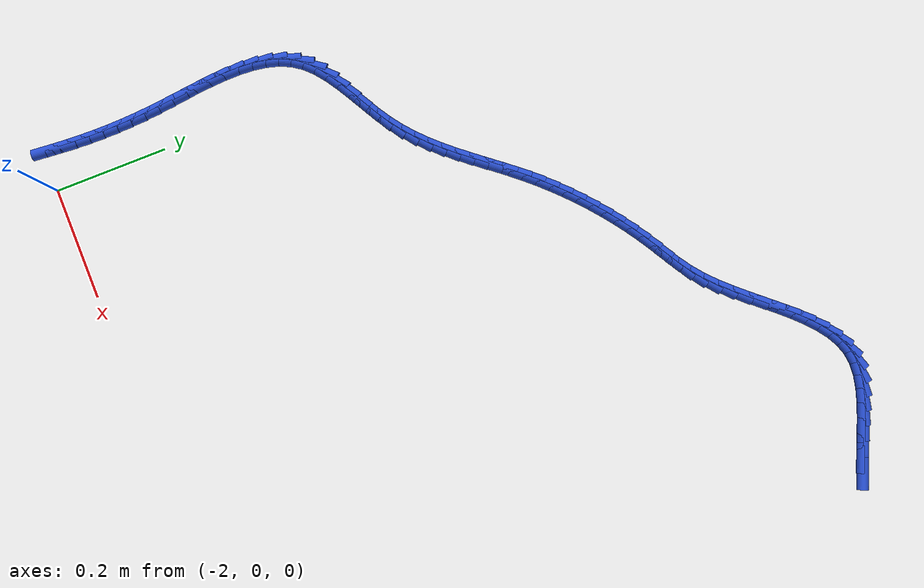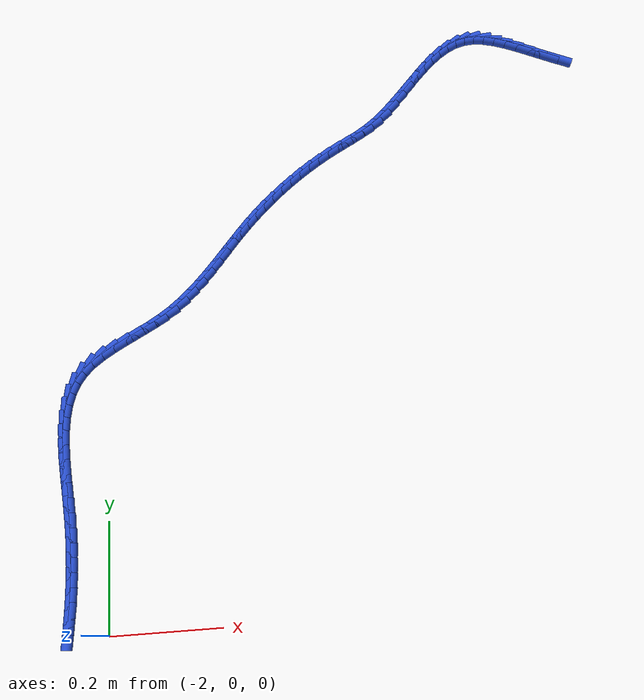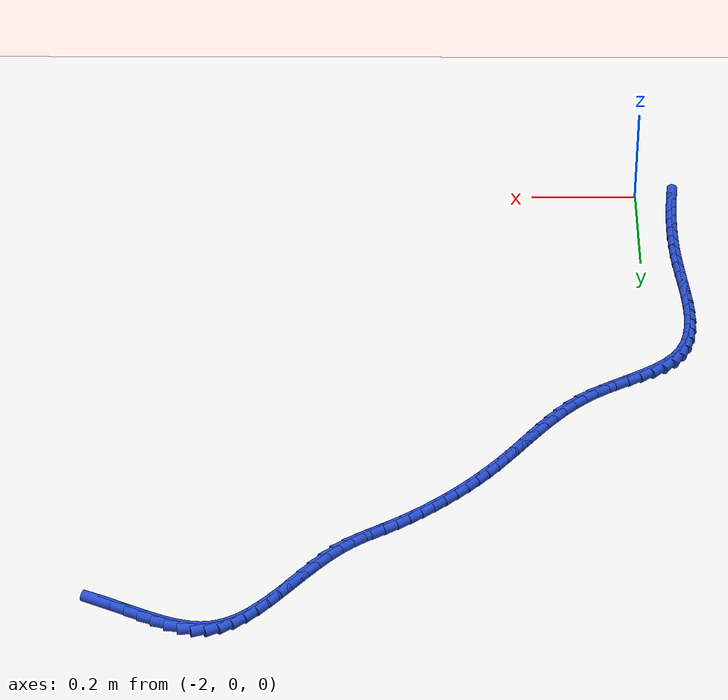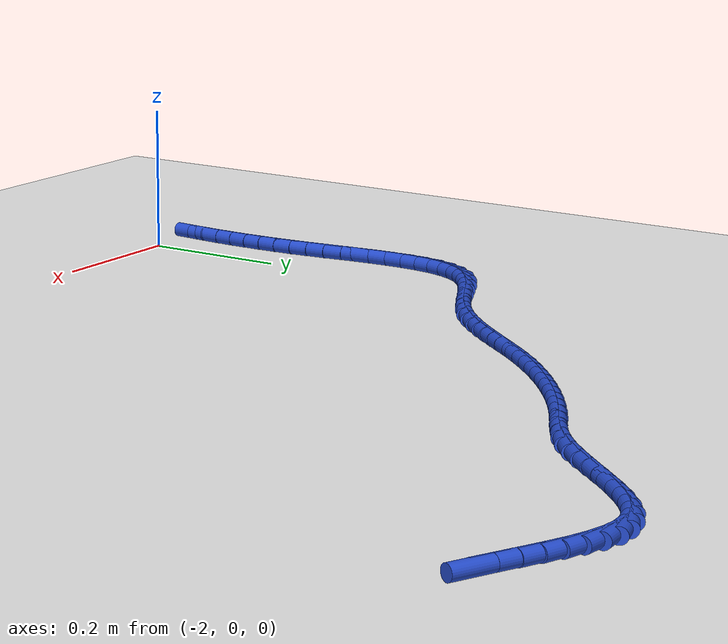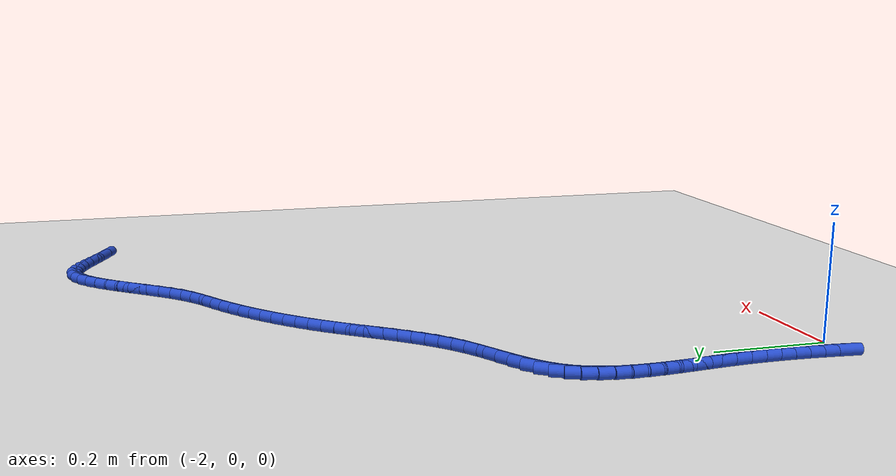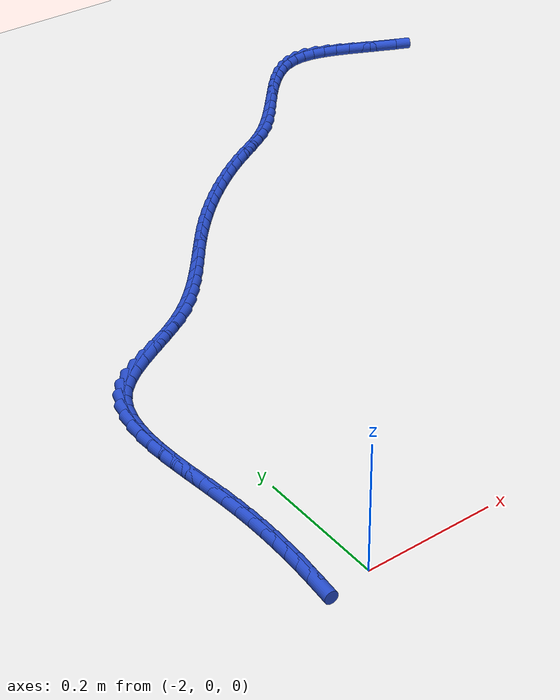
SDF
<sdf version="1.6">
 <world name="default">
  <model name="ground_plane">
   <static>1</static>
   <link name="link">
    <collision name="collision">
     <geometry><plane><normal>0 0 1</normal><size>100 100</size></plane></geometry>
     <surface><friction><ode><mu>100</mu><mu2>50</mu2></ode></friction></surface>
    </collision>
    <visual name="visual">
     <cast_shadows>0</cast_shadows>
     <geometry><plane><normal>0 0 1</normal><size>100 100</size></plane></geometry>
     <material>
      <script><uri>file://media/materials/scripts/gazebo.material</uri><name>Gazebo/WhiteGlow</name></script>
     </material>
    </visual>
   </link>
  </model>
  <model name="line">
   <link name="link_66">
    <pose>-1.0453894091018305 1.1118237958937458 0.01 0 1.57 -0.4169796591906771</pose>
    <collision name="collision">
     <geometry><cylinder><radius>0.01</radius><length>0.08</length></cylinder></geometry>
    </collision>
    <visual name="visual">
     <material>
      <script><name>Gazebo/Blue</name><uri>file://media/materials/scripts/gazebo.material</uri></script>
     </material>
     <geometry><cylinder><radius>0.01</radius><length>0.08</length></cylinder></geometry>
    </visual>
   </link>
   <link name="link_67">
    <pose>-1.0707755451050622 1.1230687050792298 0.01 0 1.57 -0.4318065948784096</pose>
    <collision name="collision">
     <geometry><cylinder><radius>0.01</radius><length>0.08</length></cylinder></geometry>
    </collision>
    <visual name="visual">
     <material>
      <script><name>Gazebo/Blue</name><uri>file://media/materials/scripts/gazebo.material</uri></script>
     </material>
     <geometry><cylinder><radius>0.01</radius><length>0.08</length></cylinder></geometry>
    </visual>
   </link>
   <link name="link_68">
    <pose>-1.0957689422361025 1.1345858979371257 0.01 0 1.57 -0.4237304479402189</pose>
    <collision name="collision">
     <geometry><cylinder><radius>0.01</radius><length>0.08</length></cylinder></geometry>
    </collision>
    <visual name="visual">
     <material>
      <script><name>Gazebo/Blue</name><uri>file://media/materials/scripts/gazebo.material</uri></script>
     </material>
     <geometry><cylinder><radius>0.01</radius><length>0.08</length></cylinder></geometry>
    </visual>
   </link>
   <link name="link_69">
    <pose>-1.1202995102455309 1.1456505193976976 0.01 0 1.57 -0.39081404400879194</pose>
    <collision name="collision">
     <geometry><cylinder><radius>0.01</radius><length>0.08</length></cylinder></geometry>
    </collision>
    <visual name="visual">
     <material>
      <script><name>Gazebo/Blue</name><uri>file://media/materials/scripts/gazebo.material</uri></script>
     </material>
     <geometry><cylinder><radius>0.01</radius><length>0.08</length></cylinder></geometry>
    </visual>
   </link>
   <link name="link_70">
    <pose>-1.1442971588839248 1.1555377143912107 0.01 0 1.57 -0.32891570914471635</pose>
    <collision name="collision">
     <geometry><cylinder><radius>0.01</radius><length>0.08</length></cylinder></geometry>
    </collision>
    <visual name="visual">
     <material>
      <script><name>Gazebo/Blue</name><uri>file://media/materials/scripts/gazebo.material</uri></script>
     </material>
     <geometry><cylinder><radius>0.01</radius><length>0.08</length></cylinder></geometry>
    </visual>
   </link>
   <link name="link_71">
    <pose>-1.1676917979018644 1.1635226278479285 0.01 0 1.57 -0.23157153831979121</pose>
    <collision name="collision">
     <geometry><cylinder><radius>0.01</radius><length>0.08</length></cylinder></geometry>
    </collision>
    <visual name="visual">
     <material>
      <script><name>Gazebo/Blue</name><uri>file://media/materials/scripts/gazebo.material</uri></script>
     </material>
     <geometry><cylinder><radius>0.01</radius><length>0.08</length></cylinder></geometry>
    </visual>
   </link>
   <link name="link_72">
    <pose>-1.1904133370499284 1.168880404698117 0.01 0 1.57 -0.09100976090152608</pose>
    <collision name="collision">
     <geometry><cylinder><radius>0.01</radius><length>0.08</length></cylinder></geometry>
    </collision>
    <visual name="visual">
     <material>
      <script><name>Gazebo/Blue</name><uri>file://media/materials/scripts/gazebo.material</uri></script>
     </material>
     <geometry><cylinder><radius>0.01</radius><length>0.08</length></cylinder></geometry>
    </visual>
   </link>
   <link name="link_73">
    <pose>-1.2123916860786954 1.1708861898720404 0.01 0 1.57 0.09744494103459894</pose>
    <collision name="collision">
     <geometry><cylinder><radius>0.01</radius><length>0.08</length></cylinder></geometry>
    </collision>
    <visual name="visual">
     <material>
      <script><name>Gazebo/Blue</name><uri>file://media/materials/scripts/gazebo.material</uri></script>
     </material>
     <geometry><cylinder><radius>0.01</radius><length>0.08</length></cylinder></geometry>
    </visual>
   </link>
   <link name="link_74">
    <pose>-1.2335570856744762 1.1688171758213879 0.01 0 1.57 0.3084296139586318</pose>
    <collision name="collision">
     <geometry><cylinder><radius>0.01</radius><length>0.08</length></cylinder></geometry>
    </collision>
    <visual name="visual">
     <material>
      <script><name>Gazebo/Blue</name><uri>file://media/materials/scripts/gazebo.material</uri></script>
     </material>
     <geometry><cylinder><radius>0.01</radius><length>0.08</length></cylinder></geometry>
    </visual>
   </link>
   <link name="link_75">
    <pose>-1.2539019714685462 1.1623353592665024 0.01 0 1.57 0.48662779591839656</pose>
    <collision name="collision">
     <geometry><cylinder><radius>0.01</radius><length>0.08</length></cylinder></geometry>
    </collision>
    <visual name="visual">
     <material>
      <script><name>Gazebo/Blue</name><uri>file://media/materials/scripts/gazebo.material</uri></script>
     </material>
     <geometry><cylinder><radius>0.01</radius><length>0.08</length></cylinder></geometry>
    </visual>
   </link>
   <link name="link_76">
    <pose>-1.273553823532791 1.1519382658800192 0.01 0 1.57 0.62231070719771</pose>
    <collision name="collision">
     <geometry><cylinder><radius>0.01</radius><length>0.08</length></cylinder></geometry>
    </collision>
    <visual name="visual">
     <material>
      <script><name>Gazebo/Blue</name><uri>file://media/materials/scripts/gazebo.material</uri></script>
     </material>
     <geometry><cylinder><radius>0.01</radius><length>0.08</length></cylinder></geometry>
    </visual>
   </link>
   <link name="link_77">
    <pose>-1.2926578312646495 1.138232990111772 0.01 0 1.57 0.7201211053214716</pose>
    <collision name="collision">
     <geometry><cylinder><radius>0.01</radius><length>0.08</length></cylinder></geometry>
    </collision>
    <visual name="visual">
     <material>
      <script><name>Gazebo/Blue</name><uri>file://media/materials/scripts/gazebo.material</uri></script>
     </material>
     <geometry><cylinder><radius>0.01</radius><length>0.08</length></cylinder></geometry>
    </visual>
   </link>
   <link name="link_78">
    <pose>-1.3113591840615595 1.1218266264115935 0.01 0 1.57 0.7869266796724762</pose>
    <collision name="collision">
     <geometry><cylinder><radius>0.01</radius><length>0.08</length></cylinder></geometry>
    </collision>
    <visual name="visual">
     <material>
      <script><name>Gazebo/Blue</name><uri>file://media/materials/scripts/gazebo.material</uri></script>
     </material>
     <geometry><cylinder><radius>0.01</radius><length>0.08</length></cylinder></geometry>
    </visual>
   </link>
   <link name="link_79">
    <pose>-1.3298030713209599 1.1033262692293173 0.01 0 1.57 0.8285783532904871</pose>
    <collision name="collision">
     <geometry><cylinder><radius>0.01</radius><length>0.08</length></cylinder></geometry>
    </collision>
    <visual name="visual">
     <material>
      <script><name>Gazebo/Blue</name><uri>file://media/materials/scripts/gazebo.material</uri></script>
     </material>
     <geometry><cylinder><radius>0.01</radius><length>0.08</length></cylinder></geometry>
    </visual>
   </link>
   <link name="link_80">
    <pose>-1.3481346824402878 1.083339013014777 0.01 0 1.57 0.8491006721655542</pose>
    <collision name="collision">
     <geometry><cylinder><radius>0.01</radius><length>0.08</length></cylinder></geometry>
    </collision>
    <visual name="visual">
     <material>
      <script><name>Gazebo/Blue</name><uri>file://media/materials/scripts/gazebo.material</uri></script>
     </material>
     <geometry><cylinder><radius>0.01</radius><length>0.08</length></cylinder></geometry>
    </visual>
   </link>
   <link name="link_81">
    <pose>-1.3664992068169821 1.062471952217805 0.01 0 1.57 0.8507532141520987</pose>
    <collision name="collision">
     <geometry><cylinder><radius>0.01</radius><length>0.08</length></cylinder></geometry>
    </collision>
    <visual name="visual">
     <material>
      <script><name>Gazebo/Blue</name><uri>file://media/materials/scripts/gazebo.material</uri></script>
     </material>
     <geometry><cylinder><radius>0.01</radius><length>0.08</length></cylinder></geometry>
    </visual>
   </link>
   <link name="link_82">
    <pose>-1.3850418338484816 1.0413321812882352 0.01 0 1.57 0.8342476919728754</pose>
    <collision name="collision">
     <geometry><cylinder><radius>0.01</radius><length>0.08</length></cylinder></geometry>
    </collision>
    <visual name="visual">
     <material>
      <script><name>Gazebo/Blue</name><uri>file://media/materials/scripts/gazebo.material</uri></script>
     </material>
     <geometry><cylinder><radius>0.01</radius><length>0.08</length></cylinder></geometry>
    </visual>
   </link>
   <link name="link_83">
    <pose>-1.4039077529322235 1.0205267946759005 0.01 0 1.57 0.7989057643513876</pose>
    <collision name="collision">
     <geometry><cylinder><radius>0.01</radius><length>0.08</length></cylinder></geometry>
    </collision>
    <visual name="visual">
     <material>
      <script><name>Gazebo/Blue</name><uri>file://media/materials/scripts/gazebo.material</uri></script>
     </material>
     <geometry><cylinder><radius>0.01</radius><length>0.08</length></cylinder></geometry>
    </visual>
   </link>
   <link name="link_84">
    <pose>-1.423242153465647 1.0006628868306342 0.01 0 1.57 0.7427530610724513</pose>
    <collision name="collision">
     <geometry><cylinder><radius>0.01</radius><length>0.08</length></cylinder></geometry>
    </collision>
    <visual name="visual">
     <material>
      <script><name>Gazebo/Blue</name><uri>file://media/materials/scripts/gazebo.material</uri></script>
     </material>
     <geometry><cylinder><radius>0.01</radius><length>0.08</length></cylinder></geometry>
    </visual>
   </link>
   <link name="link_85">
    <pose>-1.4431902248461903 0.9823475522022698 0.01 0 1.57 0.6634583328052309</pose>
    <collision name="collision">
     <geometry><cylinder><radius>0.01</radius><length>0.08</length></cylinder></geometry>
    </collision>
    <visual name="visual">
     <material>
      <script><name>Gazebo/Blue</name><uri>file://media/materials/scripts/gazebo.material</uri></script>
     </material>
     <geometry><cylinder><radius>0.01</radius><length>0.08</length></cylinder></geometry>
    </visual>
   </link>
   <link name="link_86">
    <pose>-1.463890602941266 0.9661668683838601 0.01 0 1.57 0.583532354216439</pose>
    <collision name="collision">
     <geometry><cylinder><radius>0.01</radius><length>0.08</length></cylinder></geometry>
    </collision>
    <visual name="visual">
     <material>
      <script><name>Gazebo/Blue</name><uri>file://media/materials/scripts/gazebo.material</uri></script>
     </material>
     <geometry><cylinder><radius>0.01</radius><length>0.08</length></cylinder></geometry>
    </visual>
   </link>
   <link name="link_87">
    <pose>-1.4852762813211497 0.9520474279748575 0.01 0 1.57 0.5353211037332388</pose>
    <collision name="collision">
     <geometry><cylinder><radius>0.01</radius><length>0.08</length></cylinder></geometry>
    </collision>
    <visual name="visual">
     <material>
      <script><name>Gazebo/Blue</name><uri>file://media/materials/scripts/gazebo.material</uri></script>
     </material>
     <geometry><cylinder><radius>0.01</radius><length>0.08</length></cylinder></geometry>
    </visual>
   </link>
   <link name="link_88">
    <pose>-1.5070385004389977 0.9391405329116689 0.01 0 1.57 0.5233184466114833</pose>
    <collision name="collision">
     <geometry><cylinder><radius>0.01</radius><length>0.08</length></cylinder></geometry>
    </collision>
    <visual name="visual">
     <material>
      <script><name>Gazebo/Blue</name><uri>file://media/materials/scripts/gazebo.material</uri></script>
     </material>
     <geometry><cylinder><radius>0.01</radius><length>0.08</length></cylinder></geometry>
    </visual>
   </link>
   <link name="link_89">
    <pose>-1.5288546657483024 0.9265531169496873 0.01 0 1.57 0.5459961883943755</pose>
    <collision name="collision">
     <geometry><cylinder><radius>0.01</radius><length>0.08</length></cylinder></geometry>
    </collision>
    <visual name="visual">
     <material>
      <script><name>Gazebo/Blue</name><uri>file://media/materials/scripts/gazebo.material</uri></script>
     </material>
     <geometry><cylinder><radius>0.01</radius><length>0.08</length></cylinder></geometry>
    </visual>
   </link>
   <link name="link_90">
    <pose>-1.5504203977823403 0.9134495660161623 0.01 0 1.57 0.5805741996862741</pose>
    <collision name="collision">
     <geometry><cylinder><radius>0.01</radius><length>0.08</length></cylinder></geometry>
    </collision>
    <visual name="visual">
     <material>
      <script><name>Gazebo/Blue</name><uri>file://media/materials/scripts/gazebo.material</uri></script>
     </material>
     <geometry><cylinder><radius>0.01</radius><length>0.08</length></cylinder></geometry>
    </visual>
   </link>
   <link name="link_91">
    <pose>-1.5716077851406982 0.8995508638569399 0.01 0 1.57 0.6144068579071822</pose>
    <collision name="collision">
     <geometry><cylinder><radius>0.01</radius><length>0.08</length></cylinder></geometry>
    </collision>
    <visual name="visual">
     <material>
      <script><name>Gazebo/Blue</name><uri>file://media/materials/scripts/gazebo.material</uri></script>
     </material>
     <geometry><cylinder><radius>0.01</radius><length>0.08</length></cylinder></geometry>
    </visual>
   </link>
   <link name="link_92">
    <pose>-1.5923879831888246 0.8848904606426838 0.01 0 1.57 0.6474605460030386</pose>
    <collision name="collision">
     <geometry><cylinder><radius>0.01</radius><length>0.08</length></cylinder></geometry>
    </collision>
    <visual name="visual">
     <material>
      <script><name>Gazebo/Blue</name><uri>file://media/materials/scripts/gazebo.material</uri></script>
     </material>
     <geometry><cylinder><radius>0.01</radius><length>0.08</length></cylinder></geometry>
    </visual>
   </link>
   <link name="link_93">
    <pose>-1.6127332453818088 0.8695052700279114 0.01 0 1.57 0.6798415475389369</pose>
    <collision name="collision">
     <geometry><cylinder><radius>0.01</radius><length>0.08</length></cylinder></geometry>
    </collision>
    <visual name="visual">
     <material>
      <script><name>Gazebo/Blue</name><uri>file://media/materials/scripts/gazebo.material</uri></script>
     </material>
     <geometry><cylinder><radius>0.01</radius><length>0.08</length></cylinder></geometry>
    </visual>
   </link>
   <link name="link_94">
    <pose>-1.6326158251747398 0.8534322056671401 0.01 0 1.57 0.7116559061877915</pose>
    <collision name="collision">
     <geometry><cylinder><radius>0.01</radius><length>0.08</length></cylinder></geometry>
    </collision>
    <visual name="visual">
     <material>
      <script><name>Gazebo/Blue</name><uri>file://media/materials/scripts/gazebo.material</uri></script>
     </material>
     <geometry><cylinder><radius>0.01</radius><length>0.08</length></cylinder></geometry>
    </visual>
   </link>
   <link name="link_95">
    <pose>-1.6520079760227062 0.8367081812148868 0.01 0 1.57 0.7430093837253482</pose>
    <collision name="collision">
     <geometry><cylinder><radius>0.01</radius><length>0.08</length></cylinder></geometry>
    </collision>
    <visual name="visual">
     <material>
      <script><name>Gazebo/Blue</name><uri>file://media/materials/scripts/gazebo.material</uri></script>
     </material>
     <geometry><cylinder><radius>0.01</radius><length>0.08</length></cylinder></geometry>
    </visual>
   </link>
   <link name="link_96">
    <pose>-1.670881951380797 0.8193701103256689 0.01 0 1.57 0.7740075812421907</pose>
    <collision name="collision">
     <geometry><cylinder><radius>0.01</radius><length>0.08</length></cylinder></geometry>
    </collision>
    <visual name="visual">
     <material>
      <script><name>Gazebo/Blue</name><uri>file://media/materials/scripts/gazebo.material</uri></script>
     </material>
     <geometry><cylinder><radius>0.01</radius><length>0.08</length></cylinder></geometry>
    </visual>
   </link>
   <link name="link_97">
    <pose>-1.6892100047041012 0.8014549066540037 0.01 0 1.57 0.8047561918967128</pose>
    <collision name="collision">
     <geometry><cylinder><radius>0.01</radius><length>0.08</length></cylinder></geometry>
    </collision>
    <visual name="visual">
     <material>
      <script><name>Gazebo/Blue</name><uri>file://media/materials/scripts/gazebo.material</uri></script>
     </material>
     <geometry><cylinder><radius>0.01</radius><length>0.08</length></cylinder></geometry>
    </visual>
   </link>
   <link name="link_98">
    <pose>-1.7069643894477076 0.7829994838544083 0.01 0 1.57 0.8353613588397953</pose>
    <collision name="collision">
     <geometry><cylinder><radius>0.01</radius><length>0.08</length></cylinder></geometry>
    </collision>
    <visual name="visual">
     <material>
      <script><name>Gazebo/Blue</name><uri>file://media/materials/scripts/gazebo.material</uri></script>
     </material>
     <geometry><cylinder><radius>0.01</radius><length>0.08</length></cylinder></geometry>
    </visual>
   </link>
   <link name="link_99">
    <pose>-1.7241173590667054 0.7640407555814002 0.01 0 1.57 0.8640294983337509</pose>
    <collision name="collision">
     <geometry><cylinder><radius>0.01</radius><length>0.08</length></cylinder></geometry>
    </collision>
    <visual name="visual">
     <material>
      <script><name>Gazebo/Blue</name><uri>file://media/materials/scripts/gazebo.material</uri></script>
     </material>
     <geometry><cylinder><radius>0.01</radius><length>0.08</length></cylinder></geometry>
    </visual>
   </link>
   <link name="link_100">
    <pose>-1.7406837829666775 0.7446403703714531 0.01 0 1.57 0.8831498021913282</pose>
    <collision name="collision">
     <geometry><cylinder><radius>0.01</radius><length>0.08</length></cylinder></geometry>
    </collision>
    <visual name="visual">
     <material>
      <script><name>Gazebo/Blue</name><uri>file://media/materials/scripts/gazebo.material</uri></script>
     </material>
     <geometry><cylinder><radius>0.01</radius><length>0.08</length></cylinder></geometry>
    </visual>
   </link>
   <link name="link_101">
    <pose>-1.756849591720358 0.7249592630078058 0.01 0 1.57 0.8907363095284881</pose>
    <collision name="collision">
     <geometry><cylinder><radius>0.01</radius><length>0.08</length></cylinder></geometry>
    </collision>
    <visual name="visual">
     <material>
      <script><name>Gazebo/Blue</name><uri>file://media/materials/scripts/gazebo.material</uri></script>
     </material>
     <geometry><cylinder><radius>0.01</radius><length>0.08</length></cylinder></geometry>
    </visual>
   </link>
   <link name="link_102">
    <pose>-1.772843631056535 0.7051832768186627 0.01 0 1.57 0.886736983141647</pose>
    <collision name="collision">
     <geometry><cylinder><radius>0.01</radius><length>0.08</length></cylinder></geometry>
    </collision>
    <visual name="visual">
     <material>
      <script><name>Gazebo/Blue</name><uri>file://media/materials/scripts/gazebo.material</uri></script>
     </material>
     <geometry><cylinder><radius>0.01</radius><length>0.08</length></cylinder></geometry>
    </visual>
   </link>
   <link name="link_103">
    <pose>-1.7888947467040652 0.685498255132267 0.01 0 1.57 0.8711061165821086</pose>
    <collision name="collision">
     <geometry><cylinder><radius>0.01</radius><length>0.08</length></cylinder></geometry>
    </collision>
    <visual name="visual">
     <material>
      <script><name>Gazebo/Blue</name><uri>file://media/materials/scripts/gazebo.material</uri></script>
     </material>
     <geometry><cylinder><radius>0.01</radius><length>0.08</length></cylinder></geometry>
    </visual>
   </link>
   <link name="link_104">
    <pose>-1.8052317843918035 0.6660900412768624 0.01 0 1.57 0.8438207421859075</pose>
    <collision name="collision">
     <geometry><cylinder><radius>0.01</radius><length>0.08</length></cylinder></geometry>
    </collision>
    <visual name="visual">
     <material>
      <script><name>Gazebo/Blue</name><uri>file://media/materials/scripts/gazebo.material</uri></script>
     </material>
     <geometry><cylinder><radius>0.01</radius><length>0.08</length></cylinder></geometry>
    </visual>
   </link>
   <link name="link_105">
    <pose>-1.822083589848607 0.647144478580693 0.01 0 1.57 0.80494431223391</pose>
    <collision name="collision">
     <geometry><cylinder><radius>0.01</radius><length>0.08</length></cylinder></geometry>
    </collision>
    <visual name="visual">
     <material>
      <script><name>Gazebo/Blue</name><uri>file://media/materials/scripts/gazebo.material</uri></script>
     </material>
     <geometry><cylinder><radius>0.01</radius><length>0.08</length></cylinder></geometry>
    </visual>
   </link>
   <link name="link_106">
    <pose>-1.8396790088033301 0.6288474103720021 0.01 0 1.57 0.7547353060873075</pose>
    <collision name="collision">
     <geometry><cylinder><radius>0.01</radius><length>0.08</length></cylinder></geometry>
    </collision>
    <visual name="visual">
     <material>
      <script><name>Gazebo/Blue</name><uri>file://media/materials/scripts/gazebo.material</uri></script>
     </material>
     <geometry><cylinder><radius>0.01</radius><length>0.08</length></cylinder></geometry>
    </visual>
   </link>
   <link name="link_107">
    <pose>-1.8582468869848292 0.6113846799790336 0.01 0 1.57 0.6937891043608203</pose>
    <collision name="collision">
     <geometry><cylinder><radius>0.01</radius><length>0.08</length></cylinder></geometry>
    </collision>
    <visual name="visual">
     <material>
      <script><name>Gazebo/Blue</name><uri>file://media/materials/scripts/gazebo.material</uri></script>
     </material>
     <geometry><cylinder><radius>0.01</radius><length>0.08</length></cylinder></geometry>
    </visual>
   </link>
   <link name="link_108">
    <pose>-1.878016070121961 0.5949421307300311 0.01 0 1.57 0.6232111863580447</pose>
    <collision name="collision">
     <geometry><cylinder><radius>0.01</radius><length>0.08</length></cylinder></geometry>
    </collision>
    <visual name="visual">
     <material>
      <script><name>Gazebo/Blue</name><uri>file://media/materials/scripts/gazebo.material</uri></script>
     </material>
     <geometry><cylinder><radius>0.01</radius><length>0.08</length></cylinder></geometry>
    </visual>
   </link>
   <link name="link_109">
    <pose>-1.8992147875682197 0.5797051713781585 0.01 0 1.57 0.5549286902476604</pose>
    <collision name="collision">
     <geometry><cylinder><radius>0.01</radius><length>0.08</length></cylinder></geometry>
    </collision>
    <visual name="visual">
     <material>
      <script><name>Gazebo/Blue</name><uri>file://media/materials/scripts/gazebo.material</uri></script>
     </material>
     <geometry><cylinder><radius>0.01</radius><length>0.08</length></cylinder></geometry>
    </visual>
   </link>
   <link name="link_110">
    <pose>-1.9218275350695417 0.565687366442128 0.01 0 1.57 0.5142368209426443</pose>
    <collision name="collision">
     <geometry><cylinder><radius>0.01</radius><length>0.08</length></cylinder></geometry>
    </collision>
    <visual name="visual">
     <material>
      <script><name>Gazebo/Blue</name><uri>file://media/materials/scripts/gazebo.material</uri></script>
     </material>
     <geometry><cylinder><radius>0.01</radius><length>0.08</length></cylinder></geometry>
    </visual>
   </link>
   <link name="link_111">
    <pose>-1.9452248568423995 0.5524694142814587 0.01 0 1.57 0.5029409960806283</pose>
    <collision name="collision">
     <geometry><cylinder><radius>0.01</radius><length>0.08</length></cylinder></geometry>
    </collision>
    <visual name="visual">
     <material>
      <script><name>Gazebo/Blue</name><uri>file://media/materials/scripts/gazebo.material</uri></script>
     </material>
     <geometry><cylinder><radius>0.01</radius><length>0.08</length></cylinder></geometry>
    </visual>
   </link>
   <link name="link_112">
    <pose>-1.9686821383640412 0.539564921643408 0.01 0 1.57 0.5208995389143359</pose>
    <collision name="collision">
     <geometry><cylinder><radius>0.01</radius><length>0.08</length></cylinder></geometry>
    </collision>
    <visual name="visual">
     <material>
      <script><name>Gazebo/Blue</name><uri>file://media/materials/scripts/gazebo.material</uri></script>
     </material>
     <geometry><cylinder><radius>0.01</radius><length>0.08</length></cylinder></geometry>
    </visual>
   </link>
   <link name="link_113">
    <pose>-1.9914747651117144 0.5264874952752333 0.01 0 1.57 0.5705917046074082</pose>
    <collision name="collision">
     <geometry><cylinder><radius>0.01</radius><length>0.08</length></cylinder></geometry>
    </collision>
    <visual name="visual">
     <material>
      <script><name>Gazebo/Blue</name><uri>file://media/materials/scripts/gazebo.material</uri></script>
     </material>
     <geometry><cylinder><radius>0.01</radius><length>0.08</length></cylinder></geometry>
    </visual>
   </link>
   <link name="link_114">
    <pose>-2.0128781225626673 0.5127507419241916 0.01 0 1.57 0.657140664791942</pose>
    <collision name="collision">
     <geometry><cylinder><radius>0.01</radius><length>0.08</length></cylinder></geometry>
    </collision>
    <visual name="visual">
     <material>
      <script><name>Gazebo/Blue</name><uri>file://media/materials/scripts/gazebo.material</uri></script>
     </material>
     <geometry><cylinder><radius>0.01</radius><length>0.08</length></cylinder></geometry>
    </visual>
   </link>
   <link name="link_115">
    <pose>-2.0321675961941463 0.49786826833753994 0.01 0 1.57 0.7873278045816294</pose>
    <collision name="collision">
     <geometry><cylinder><radius>0.01</radius><length>0.08</length></cylinder></geometry>
    </collision>
    <visual name="visual">
     <material>
      <script><name>Gazebo/Blue</name><uri>file://media/materials/scripts/gazebo.material</uri></script>
     </material>
     <geometry><cylinder><radius>0.01</radius><length>0.08</length></cylinder></geometry>
    </visual>
   </link>
   <link name="link_116">
    <pose>-2.0486185714833995 0.4813536812625358 0.01 0 1.57 0.9621233113843346</pose>
    <collision name="collision">
     <geometry><cylinder><radius>0.01</radius><length>0.08</length></cylinder></geometry>
    </collision>
    <visual name="visual">
     <material>
      <script><name>Gazebo/Blue</name><uri>file://media/materials/scripts/gazebo.material</uri></script>
     </material>
     <geometry><cylinder><radius>0.01</radius><length>0.08</length></cylinder></geometry>
    </visual>
   </link>
   <link name="link_117">
    <pose>-2.0615741829602676 0.4627645496311381 0.01 0 1.57 1.140547965787437</pose>
    <collision name="collision">
     <geometry><cylinder><radius>0.01</radius><length>0.08</length></cylinder></geometry>
    </collision>
    <visual name="visual">
     <material>
      <script><name>Gazebo/Blue</name><uri>file://media/materials/scripts/gazebo.material</uri></script>
     </material>
     <geometry><cylinder><radius>0.01</radius><length>0.08</length></cylinder></geometry>
    </visual>
   </link>
   <link name="link_118">
    <pose>-2.071057694787307 0.44209977673188355 0.01 0 1.57 1.2923927121530003</pose>
    <collision name="collision">
     <geometry><cylinder><radius>0.01</radius><length>0.08</length></cylinder></geometry>
    </collision>
    <visual name="visual">
     <material>
      <script><name>Gazebo/Blue</name><uri>file://media/materials/scripts/gazebo.material</uri></script>
     </material>
     <geometry><cylinder><radius>0.01</radius><length>0.08</length></cylinder></geometry>
    </visual>
   </link>
   <link name="link_119">
    <pose>-2.0774850040034374 0.4196130443095399 0.01 0 1.57 1.4144345298338354</pose>
    <collision name="collision">
     <geometry><cylinder><radius>0.01</radius><length>0.08</length></cylinder></geometry>
    </collision>
    <visual name="visual">
     <material>
      <script><name>Gazebo/Blue</name><uri>file://media/materials/scripts/gazebo.material</uri></script>
     </material>
     <geometry><cylinder><radius>0.01</radius><length>0.08</length></cylinder></geometry>
    </visual>
   </link>
   <link name="link_120">
    <pose>-2.081276758613958 0.39556111699864993 0.01 0 1.57 1.5086985964183635</pose>
    <collision name="collision">
     <geometry><cylinder><radius>0.01</radius><length>0.08</length></cylinder></geometry>
    </collision>
    <visual name="visual">
     <material>
      <script><name>Gazebo/Blue</name><uri>file://media/materials/scripts/gazebo.material</uri></script>
     </material>
     <geometry><cylinder><radius>0.01</radius><length>0.08</length></cylinder></geometry>
    </visual>
   </link>
   <link name="link_121">
    <pose>-2.0828536066241674 0.370200759433756 0.01 0 1.57 -1.5625650120986225</pose>
    <collision name="collision">
     <geometry><cylinder><radius>0.01</radius><length>0.08</length></cylinder></geometry>
    </collision>
    <visual name="visual">
     <material>
      <script><name>Gazebo/Blue</name><uri>file://media/materials/scripts/gazebo.material</uri></script>
     </material>
     <geometry><cylinder><radius>0.01</radius><length>0.08</length></cylinder></geometry>
    </visual>
   </link>
   <link name="link_122">
    <pose>-2.0826361960393647 0.34378873624940065 0.01 0 1.57 -1.5123843118664402</pose>
    <collision name="collision">
     <geometry><cylinder><radius>0.01</radius><length>0.08</length></cylinder></geometry>
    </collision>
    <visual name="visual">
     <material>
      <script><name>Gazebo/Blue</name><uri>file://media/materials/scripts/gazebo.material</uri></script>
     </material>
     <geometry><cylinder><radius>0.01</radius><length>0.08</length></cylinder></geometry>
    </visual>
   </link>
   <link name="link_123">
    <pose>-2.081045174864849 0.316581812080127 0.01 0 1.57 -1.479360586430364</pose>
    <collision name="collision">
     <geometry><cylinder><radius>0.01</radius><length>0.08</length></cylinder></geometry>
    </collision>
    <visual name="visual">
     <material>
      <script><name>Gazebo/Blue</name><uri>file://media/materials/scripts/gazebo.material</uri></script>
     </material>
     <geometry><cylinder><radius>0.01</radius><length>0.08</length></cylinder></geometry>
    </visual>
   </link>
   <link name="link_124">
    <pose>-2.0785011911059192 0.2888367515604765 0.01 0 1.57 -1.4614698071953636</pose>
    <collision name="collision">
     <geometry><cylinder><radius>0.01</radius><length>0.08</length></cylinder></geometry>
    </collision>
    <visual name="visual">
     <material>
      <script><name>Gazebo/Blue</name><uri>file://media/materials/scripts/gazebo.material</uri></script>
     </material>
     <geometry><cylinder><radius>0.01</radius><length>0.08</length></cylinder></geometry>
    </visual>
   </link>
   <link name="link_125">
    <pose>-2.075424892767874 0.2608103193249923 0.01 0 1.57 -1.4576331393858473</pose>
    <collision name="collision">
     <geometry><cylinder><radius>0.01</radius><length>0.08</length></cylinder></geometry>
    </collision>
    <visual name="visual">
     <material>
      <script><name>Gazebo/Blue</name><uri>file://media/materials/scripts/gazebo.material</uri></script>
     </material>
     <geometry><cylinder><radius>0.01</radius><length>0.08</length></cylinder></geometry>
    </visual>
   </link>
   <link name="link_126">
    <pose>-2.0722369278560118 0.23275928000821686 0.01 0 1.57 -1.4676731726707377</pose>
    <collision name="collision">
     <geometry><cylinder><radius>0.01</radius><length>0.08</length></cylinder></geometry>
    </collision>
    <visual name="visual">
     <material>
      <script><name>Gazebo/Blue</name><uri>file://media/materials/scripts/gazebo.material</uri></script>
     </material>
     <geometry><cylinder><radius>0.01</radius><length>0.08</length></cylinder></geometry>
    </visual>
   </link>
   <link name="link_127">
    <pose>-2.069357944375634 0.2049403982446928 0.01 0 1.57 -1.4911426114288004</pose>
    <collision name="collision">
     <geometry><cylinder><radius>0.01</radius><length>0.08</length></cylinder></geometry>
    </collision>
    <visual name="visual">
     <material>
      <script><name>Gazebo/Blue</name><uri>file://media/materials/scripts/gazebo.material</uri></script>
     </material>
     <geometry><cylinder><radius>0.01</radius><length>0.08</length></cylinder></geometry>
    </visual>
   </link>
   <link name="link_128">
    <pose>-2.067174632613978 0.17758834943134907 0.01 0 1.57 -1.5189494089744122</pose>
    <collision name="collision">
     <geometry><cylinder><radius>0.01</radius><length>0.08</length></cylinder></geometry>
    </collision>
    <visual name="visual">
     <material>
      <script><name>Gazebo/Blue</name><uri>file://media/materials/scripts/gazebo.material</uri></script>
     </material>
     <geometry><cylinder><radius>0.01</radius><length>0.08</length></cylinder></geometry>
    </visual>
   </link>
   <link name="link_129">
    <pose>-2.0657817916448664 0.15074793594834018 0.01 0 1.57 -1.5459225552826206</pose>
    <collision name="collision">
     <geometry><cylinder><radius>0.01</radius><length>0.08</length></cylinder></geometry>
    </collision>
    <visual name="visual">
     <material>
      <script><name>Gazebo/Blue</name><uri>file://media/materials/scripts/gazebo.material</uri></script>
     </material>
     <geometry><cylinder><radius>0.01</radius><length>0.08</length></cylinder></geometry>
    </visual>
   </link>
   <link name="link_130">
    <pose>-2.0651254678260407 0.12436719766411607 0.01 0 1.57 1.5698316795163738</pose>
    <collision name="collision">
     <geometry><cylinder><radius>0.01</radius><length>0.08</length></cylinder></geometry>
    </collision>
    <visual name="visual">
     <material>
      <script><name>Gazebo/Blue</name><uri>file://media/materials/scripts/gazebo.material</uri></script>
     </material>
     <geometry><cylinder><radius>0.01</radius><length>0.08</length></cylinder></geometry>
    </visual>
   </link>
   <link name="link_131">
    <pose>-2.0651505233830116 0.09839340417810519 0.01 0 1.57 1.5453799487318485</pose>
    <collision name="collision">
     <geometry><cylinder><radius>0.01</radius><length>0.08</length></cylinder></geometry>
    </collision>
    <visual name="visual">
     <material>
      <script><name>Gazebo/Blue</name><uri>file://media/materials/scripts/gazebo.material</uri></script>
     </material>
     <geometry><cylinder><radius>0.01</radius><length>0.08</length></cylinder></geometry>
    </visual>
   </link>
   <link name="link_132">
    <pose>-2.0658018205412887 0.07277382508973587 0.01 0 1.57 1.522552078914843</pose>
    <collision name="collision">
     <geometry><cylinder><radius>0.01</radius><length>0.08</length></cylinder></geometry>
    </collision>
    <visual name="visual">
     <material>
      <script><name>Gazebo/Blue</name><uri>file://media/materials/scripts/gazebo.material</uri></script>
     </material>
     <geometry><cylinder><radius>0.01</radius><length>0.08</length></cylinder></geometry>
    </visual>
   </link>
   <link name="link_133">
    <pose>-2.0670242215263825 0.04745572999843654 0.01 0 1.57 1.5015647988639196</pose>
    <collision name="collision">
     <geometry><cylinder><radius>0.01</radius><length>0.08</length></cylinder></geometry>
    </collision>
    <visual name="visual">
     <material>
      <script><name>Gazebo/Blue</name><uri>file://media/materials/scripts/gazebo.material</uri></script>
     </material>
     <geometry><cylinder><radius>0.01</radius><length>0.08</length></cylinder></geometry>
    </visual>
   </link>
   <link name="link_134">
    <pose>-2.068762588563802 0.022386388503635894 0.01 0 1.57 1.482609805621059</pose>
    <collision name="collision">
     <geometry><cylinder><radius>0.01</radius><length>0.08</length></cylinder></geometry>
    </collision>
    <visual name="visual">
     <material>
      <script><name>Gazebo/Blue</name><uri>file://media/materials/scripts/gazebo.material</uri></script>
     </material>
     <geometry><cylinder><radius>0.01</radius><length>0.08</length></cylinder></geometry>
    </visual>
   </link>
  </model>
 </world>
</sdf>
